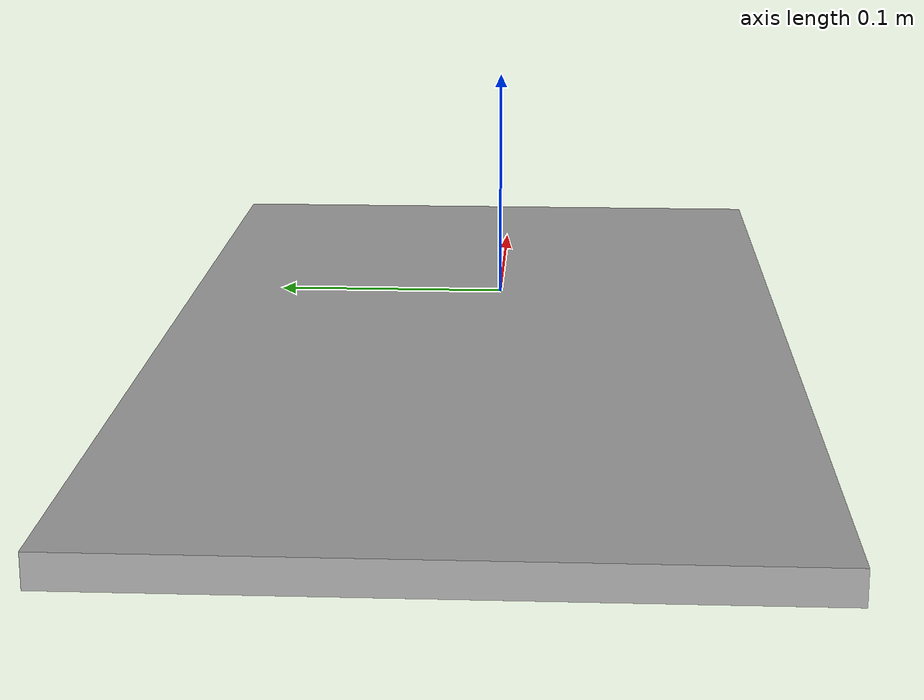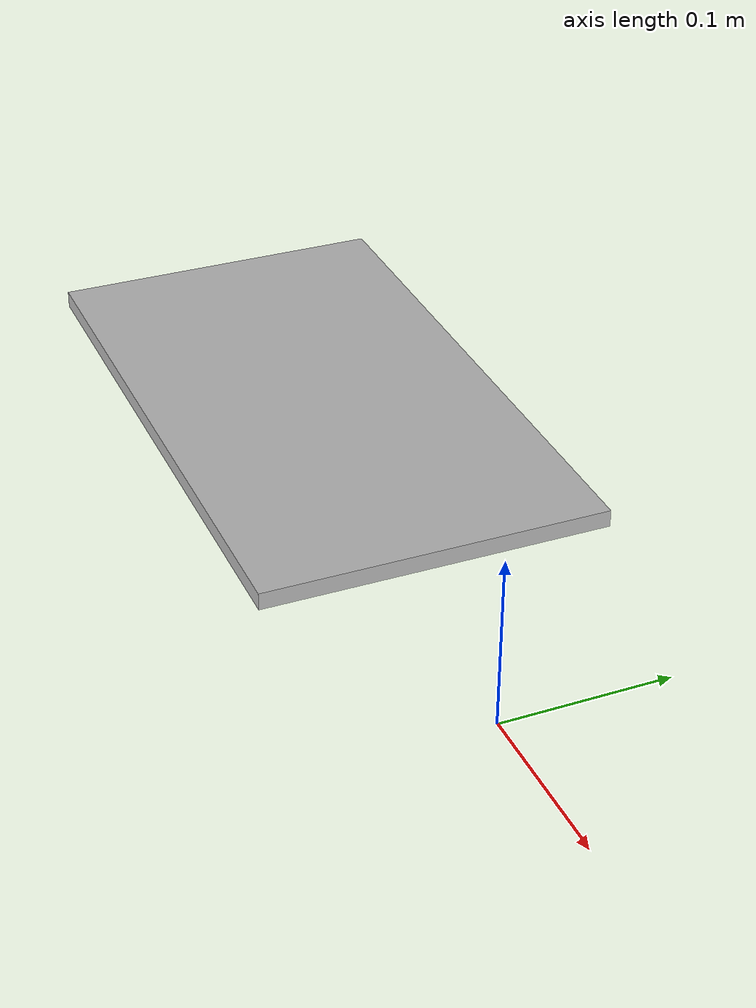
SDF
<?xml version="1.0"?>
<sdf version="1.4">
    <model name="plate">
        <static>true</static>
        <link name="object">
            <pose>-0.25 0 0.053 0 0 0</pose>
            <inertial>
                <inertia>
                    <ixx>0.000004</ixx>
                    <ixy>0</ixy>
                    <ixz>0</ixz>
                    <iyy>0.1</iyy>
                    <iyz>0</iyz>
                    <izz>0.1</izz>
                </inertia>
                <mass>1</mass>
            </inertial>
            <collision name="collision">
                <geometry>
                    <box>
                        <size>0.35 0.2 0.01</size>
                    </box>
                </geometry>
                <surface>
                    <friction>
                        <ode>
                            <mu>0.01</mu>
                            <mu2>0.01</mu2>
                        </ode>
                    </friction>
                </surface>
            </collision>
            <visual name="visual">
                <geometry>
                    <box>
                        <size>0.35 0.2 0.01</size>
                    </box>
                </geometry>
                <material>
                    <script>Gazebo/Purple</script>
                </material>
            </visual>
        </link>

    </model>
</sdf>
